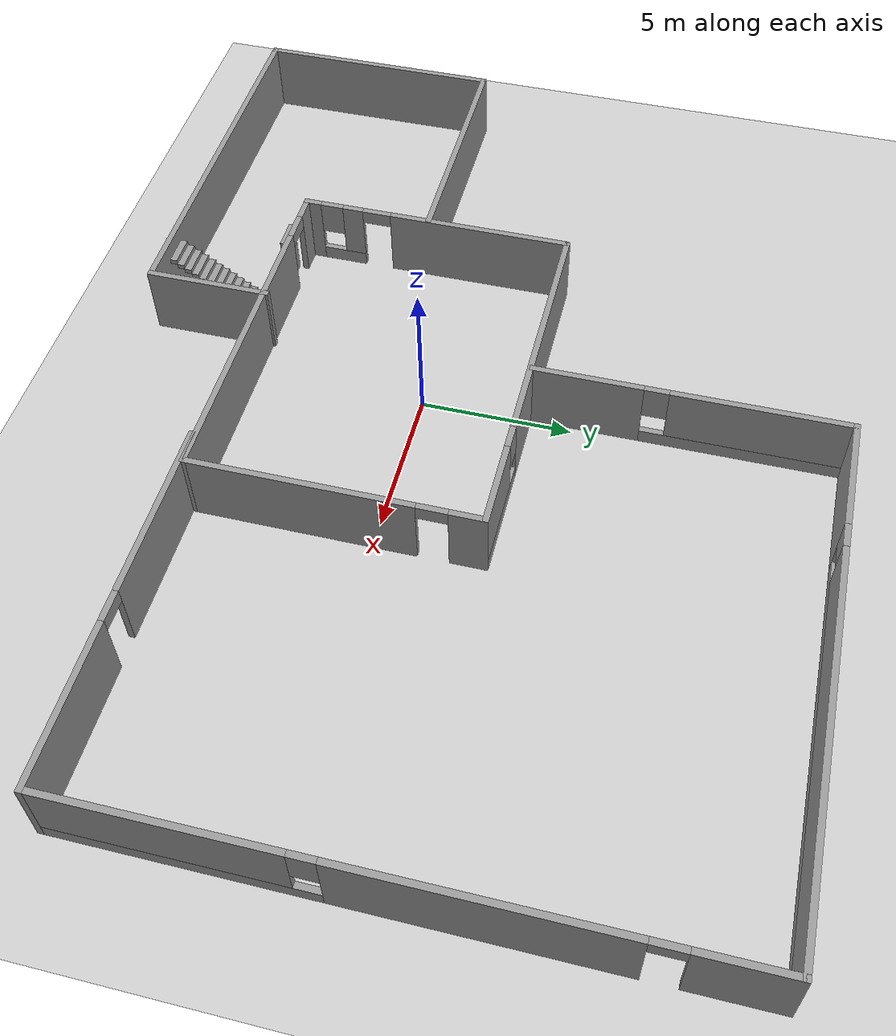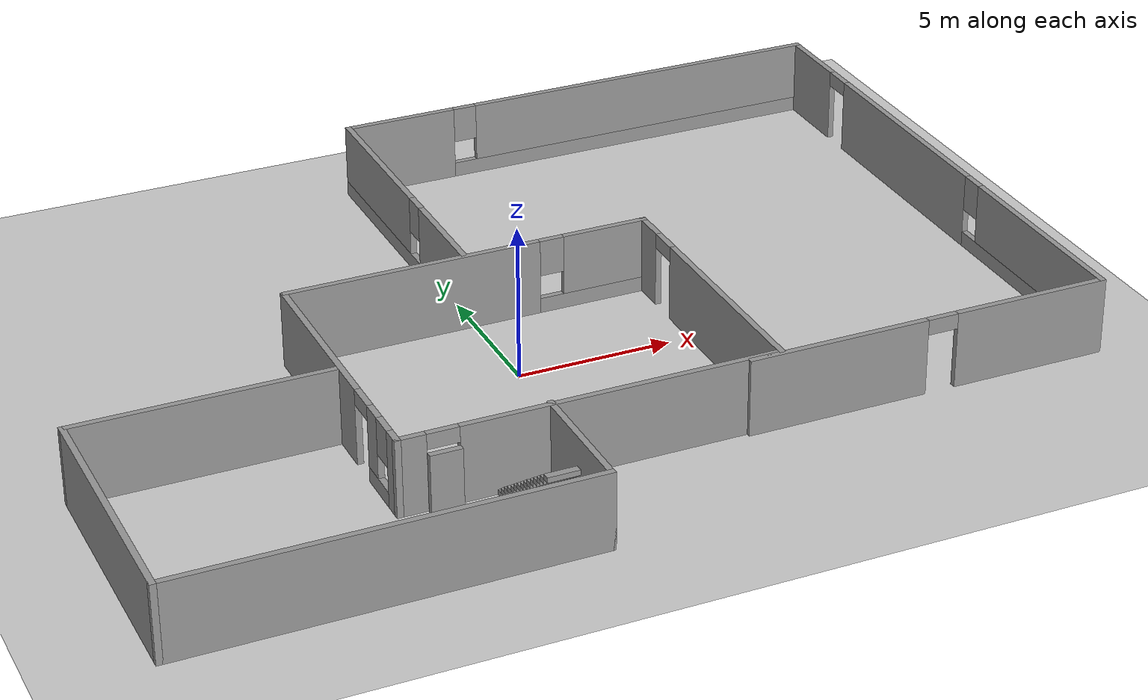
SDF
<sdf version="1.4">
 <world name="default">
  <light name="sun" type="directional">
   <pose>0 0 10 0 -0 0</pose>
   <diffuse>0.8 0.8 0.8 1</diffuse>
   <specular>0.2 0.2 0.2 1</specular>
   <attenuation>
    <range>1000</range>
    <constant>0.9</constant>
    <linear>0.01</linear>
    <quadratic>0.001</quadratic>
   </attenuation>
   <direction>-0.5 0.1 -0.9</direction>
  </light>
  <model name="ground_plane">
   <static>1</static>
   <link name="link">
    <collision name="collision">
     <geometry><plane><normal>0 0 1</normal><size>100 100</size></plane></geometry>
     <surface><friction><ode><mu>100</mu><mu2>50</mu2></ode></friction></surface>
    </collision>
    <visual name="visual">
     <cast_shadows>0</cast_shadows>
     <geometry><plane><normal>0 0 1</normal><size>100 100</size></plane></geometry>
     <material>
      <script><uri>file://media/materials/scripts/gazebo.material</uri><name>Gazebo/Grey</name></script>
     </material>
    </visual>
    <velocity_decay><linear>0</linear><angular>0</angular></velocity_decay>
   </link>
  </model>
  <physics type="ode">
   <max_step_size>0.001</max_step_size>
   <real_time_factor>1</real_time_factor>
   <real_time_update_rate>1000</real_time_update_rate>
   <gravity>0 0 -9.8</gravity>
  </physics>
  <scene><ambient>0.4 0.4 0.4 1</ambient><background>0.7 0.7 0.7 1</background><shadows>1</shadows></scene>
  <spherical_coordinates>
   <surface_model>EARTH_WGS84</surface_model>
   <latitude_deg>0</latitude_deg>
   <longitude_deg>0</longitude_deg>
   <elevation>0</elevation>
   <heading_deg>0</heading_deg>
  </spherical_coordinates>
  <model name="testing_drone">
   <link name="Door_5">
    <collision name="Door_5_Collision">
     <geometry><box><size>1 0.2 2</size></box></geometry>
     <pose>0 0 1 0 -0 0</pose>
    </collision>
    <visual name="Door_5_Visual">
     <pose>0 0 1 0 -0 0</pose>
     <geometry><box><size>1 0.2 2</size></box></geometry>
     <material>
      <script><uri>file://media/materials/scripts/gazebo.material</uri><name>Gazebo/Grey</name></script>
     </material>
    </visual>
    <velocity_decay><linear>0</linear><angular>0</angular></velocity_decay>
    <pose>-4.84187 -6.14423 0 0 -0 0</pose>
   </link>
   <link name="Stairs_1">
    <visual name="Stairs_1_Visual_0">
     <pose>-2.68839 -5.98757 0.083333 0 -0 0</pose>
     <geometry><box><size>1 0.233333 0.166667</size></box></geometry>
     <material>
      <script><uri>file://media/materials/scripts/gazebo.material</uri><name>Gazebo/Grey</name></script>
     </material>
    </visual>
    <collision name="Stairs_1_Collision_0">
     <geometry><box><size>1 0.233333 0.166667</size></box></geometry>
     <pose>-2.68839 -5.98757 0.083333 0 -0 0</pose>
    </collision>
    <visual name="Stairs_1_Visual_1">
     <pose>-2.68839 -6.2209 0.25 0 -0 0</pose>
     <geometry><box><size>1 0.233335 0.166668</size></box></geometry>
     <material>
      <script><uri>file://media/materials/scripts/gazebo.material</uri><name>Gazebo/Grey</name></script>
     </material>
    </visual>
    <collision name="Stairs_1_Collision_1">
     <geometry><box><size>1 0.233335 0.166668</size></box></geometry>
     <pose>-2.68839 -6.2209 0.25 0 -0 0</pose>
    </collision>
    <visual name="Stairs_1_Visual_2">
     <pose>-2.68839 -6.45423 0.416667 0 -0 0</pose>
     <geometry><box><size>1 0.233335 0.166668</size></box></geometry>
     <material>
      <script><uri>file://media/materials/scripts/gazebo.material</uri><name>Gazebo/Grey</name></script>
     </material>
    </visual>
    <collision name="Stairs_1_Collision_2">
     <geometry><box><size>1 0.233335 0.166668</size></box></geometry>
     <pose>-2.68839 -6.45423 0.416667 0 -0 0</pose>
    </collision>
    <visual name="Stairs_1_Visual_3">
     <pose>-2.68839 -6.68757 0.583333 0 -0 0</pose>
     <geometry><box><size>1 0.233335 0.166668</size></box></geometry>
     <material>
      <script><uri>file://media/materials/scripts/gazebo.material</uri><name>Gazebo/Grey</name></script>
     </material>
    </visual>
    <collision name="Stairs_1_Collision_3">
     <geometry><box><size>1 0.233335 0.166668</size></box></geometry>
     <pose>-2.68839 -6.68757 0.583333 0 -0 0</pose>
    </collision>
    <visual name="Stairs_1_Visual_4">
     <pose>-2.68839 -6.9209 0.75 0 -0 0</pose>
     <geometry><box><size>1 0.233335 0.166668</size></box></geometry>
     <material>
      <script><uri>file://media/materials/scripts/gazebo.material</uri><name>Gazebo/Grey</name></script>
     </material>
    </visual>
    <collision name="Stairs_1_Collision_4">
     <geometry><box><size>1 0.233335 0.166668</size></box></geometry>
     <pose>-2.68839 -6.9209 0.75 0 -0 0</pose>
    </collision>
    <visual name="Stairs_1_Visual_5">
     <pose>-2.68839 -7.15423 0.916667 0 -0 0</pose>
     <geometry><box><size>1 0.233335 0.166668</size></box></geometry>
     <material>
      <script><uri>file://media/materials/scripts/gazebo.material</uri><name>Gazebo/Grey</name></script>
     </material>
    </visual>
    <collision name="Stairs_1_Collision_5">
     <geometry><box><size>1 0.233335 0.166668</size></box></geometry>
     <pose>-2.68839 -7.15423 0.916667 0 -0 0</pose>
    </collision>
    <visual name="Stairs_1_Visual_6">
     <pose>-2.68839 -7.38757 1.08333 0 -0 0</pose>
     <geometry><box><size>1 0.233335 0.166668</size></box></geometry>
     <material>
      <script><uri>file://media/materials/scripts/gazebo.material</uri><name>Gazebo/Grey</name></script>
     </material>
    </visual>
    <collision name="Stairs_1_Collision_6">
     <geometry><box><size>1 0.233335 0.166668</size></box></geometry>
     <pose>-2.68839 -7.38757 1.08333 0 -0 0</pose>
    </collision>
    <visual name="Stairs_1_Visual_7">
     <pose>-2.68839 -7.6209 1.25 0 -0 0</pose>
     <geometry><box><size>1 0.233335 0.166668</size></box></geometry>
     <material>
      <script><uri>file://media/materials/scripts/gazebo.material</uri><name>Gazebo/Grey</name></script>
     </material>
    </visual>
    <collision name="Stairs_1_Collision_7">
     <geometry><box><size>1 0.233335 0.166668</size></box></geometry>
     <pose>-2.68839 -7.6209 1.25 0 -0 0</pose>
    </collision>
    <visual name="Stairs_1_Visual_8">
     <pose>-2.68839 -7.85423 1.41667 0 -0 0</pose>
     <geometry><box><size>1 0.233335 0.166668</size></box></geometry>
     <material>
      <script><uri>file://media/materials/scripts/gazebo.material</uri><name>Gazebo/Grey</name></script>
     </material>
    </visual>
    <collision name="Stairs_1_Collision_8">
     <geometry><box><size>1 0.233335 0.166668</size></box></geometry>
     <pose>-2.68839 -7.85423 1.41667 0 -0 0</pose>
    </collision>
    <visual name="Stairs_1_Visual_9">
     <pose>-2.68839 -8.08757 1.58333 0 -0 0</pose>
     <geometry><box><size>1 0.233335 0.166668</size></box></geometry>
     <material>
      <script><uri>file://media/materials/scripts/gazebo.material</uri><name>Gazebo/Grey</name></script>
     </material>
    </visual>
    <collision name="Stairs_1_Collision_9">
     <geometry><box><size>1 0.233335 0.166668</size></box></geometry>
     <pose>-2.68839 -8.08757 1.58333 0 -0 0</pose>
    </collision>
    <visual name="Stairs_1_Visual_10">
     <pose>-2.68839 -8.3209 1.75 0 -0 0</pose>
     <geometry><box><size>1 0.233335 0.166668</size></box></geometry>
     <material>
      <script><uri>file://media/materials/scripts/gazebo.material</uri><name>Gazebo/Grey</name></script>
     </material>
    </visual>
    <collision name="Stairs_1_Collision_10">
     <geometry><box><size>1 0.233335 0.166668</size></box></geometry>
     <pose>-2.68839 -8.3209 1.75 0 -0 0</pose>
    </collision>
    <visual name="Stairs_1_Visual_11">
     <pose>-2.68839 -8.55423 1.91667 0 -0 0</pose>
     <geometry><box><size>1 0.233335 0.166668</size></box></geometry>
     <material>
      <script><uri>file://media/materials/scripts/gazebo.material</uri><name>Gazebo/Grey</name></script>
     </material>
    </visual>
    <collision name="Stairs_1_Collision_11">
     <geometry><box><size>1 0.233335 0.166668</size></box></geometry>
     <pose>-2.68839 -8.55423 1.91667 0 -0 0</pose>
    </collision>
    <visual name="Stairs_1_Visual_12">
     <pose>-2.68839 -8.78757 2.08333 0 -0 0</pose>
     <geometry><box><size>1 0.233335 0.166668</size></box></geometry>
     <material>
      <script><uri>file://media/materials/scripts/gazebo.material</uri><name>Gazebo/Grey</name></script>
     </material>
    </visual>
    <collision name="Stairs_1_Collision_12">
     <geometry><box><size>1 0.233335 0.166668</size></box></geometry>
     <pose>-2.68839 -8.78757 2.08333 0 -0 0</pose>
    </collision>
    <visual name="Stairs_1_Visual_13">
     <pose>-2.68839 -9.0209 2.25 0 -0 0</pose>
     <geometry><box><size>1 0.233335 0.166668</size></box></geometry>
     <material>
      <script><uri>file://media/materials/scripts/gazebo.material</uri><name>Gazebo/Grey</name></script>
     </material>
    </visual>
    <collision name="Stairs_1_Collision_13">
     <geometry><box><size>1 0.233335 0.166668</size></box></geometry>
     <pose>-2.68839 -9.0209 2.25 0 -0 0</pose>
    </collision>
    <visual name="Stairs_1_Visual_14">
     <pose>-2.68839 -9.25423 2.41667 0 -0 0</pose>
     <geometry><box><size>1 0.233335 0.166668</size></box></geometry>
     <material>
      <script><uri>file://media/materials/scripts/gazebo.material</uri><name>Gazebo/Grey</name></script>
     </material>
    </visual>
    <collision name="Stairs_1_Collision_14">
     <geometry><box><size>1 0.233335 0.166668</size></box></geometry>
     <pose>-2.68839 -9.25423 2.41667 0 -0 0</pose>
    </collision>
    <velocity_decay><linear>0</linear><angular>0</angular></velocity_decay>
   </link>
   <link name="Wall_76">
    <pose>-0.146896 3.54275 0 0 -0 0</pose>
    <visual name="Wall_76_Visual_0">
     <pose>-1.84648 0 1.25 0 -0 0</pose>
     <geometry><box><size>8.40029 0.2 2.5</size></box></geometry>
     <material>
      <script><uri>file://media/materials/scripts/gazebo.material</uri><name>Gazebo/Grey</name></script>
     </material>
    </visual>
    <collision name="Wall_76_Collision_0">
     <geometry><box><size>8.40029 0.2 2.5</size></box></geometry>
     <pose>-1.84648 0 1.25 0 -0 0</pose>
    </collision>
    <visual name="Wall_76_Visual_1">
     <pose>4.20014 0 0.25 0 -0 0</pose>
     <geometry><box><size>3.69296 0.2 0.5</size></box></geometry>
     <material>
      <script><uri>file://media/materials/scripts/gazebo.material</uri><name>Gazebo/Grey</name></script>
     </material>
    </visual>
    <collision name="Wall_76_Collision_1">
     <geometry><box><size>3.69296 0.2 0.5</size></box></geometry>
     <pose>4.20014 0 0.25 0 -0 0</pose>
    </collision>
    <visual name="Wall_76_Visual_2">
     <pose>4.60014 0 1.5 0 -0 0</pose>
     <geometry><box><size>2.89296 0.2 2</size></box></geometry>
     <material>
      <script><uri>file://media/materials/scripts/gazebo.material</uri><name>Gazebo/Grey</name></script>
     </material>
    </visual>
    <collision name="Wall_76_Collision_2">
     <geometry><box><size>2.89296 0.2 2</size></box></geometry>
     <pose>4.60014 0 1.5 0 -0 0</pose>
    </collision>
    <visual name="Wall_76_Visual_3">
     <pose>2.75367 0 1.9 0 -0 0</pose>
     <geometry><box><size>0.8 0.2 1.2</size></box></geometry>
     <material>
      <script><uri>file://media/materials/scripts/gazebo.material</uri><name>Gazebo/Grey</name></script>
     </material>
    </visual>
    <collision name="Wall_76_Collision_3">
     <geometry><box><size>0.8 0.2 1.2</size></box></geometry>
     <pose>2.75367 0 1.9 0 -0 0</pose>
    </collision>
    <velocity_decay><linear>0</linear><angular>0</angular></velocity_decay>
   </link>
   <link name="Wall_77">
    <pose>5.79972 -1.12556 0 0 0 -1.5708</pose>
    <visual name="Wall_77_Visual_0">
     <pose>-4.16148 0 1.25 0 -0 0</pose>
     <geometry><box><size>1.21364 0.2 2.5</size></box></geometry>
     <material>
      <script><uri>file://media/materials/scripts/gazebo.material</uri><name>Gazebo/Grey</name></script>
     </material>
    </visual>
    <collision name="Wall_77_Collision_0">
     <geometry><box><size>1.21364 0.2 2.5</size></box></geometry>
     <pose>-4.16148 0 1.25 0 -0 0</pose>
    </collision>
    <visual name="Wall_77_Visual_1">
     <pose>1.10682 0 1.25 0 -0 0</pose>
     <geometry><box><size>7.32297 0.2 2.5</size></box></geometry>
     <material>
      <script><uri>file://media/materials/scripts/gazebo.material</uri><name>Gazebo/Grey</name></script>
     </material>
    </visual>
    <collision name="Wall_77_Collision_1">
     <geometry><box><size>7.32297 0.2 2.5</size></box></geometry>
     <pose>1.10682 0 1.25 0 -0 0</pose>
    </collision>
    <visual name="Wall_77_Visual_2">
     <pose>-3.05466 0 2.25 0 -0 0</pose>
     <geometry><box><size>1 0.2 0.5</size></box></geometry>
     <material>
      <script><uri>file://media/materials/scripts/gazebo.material</uri><name>Gazebo/Grey</name></script>
     </material>
    </visual>
    <collision name="Wall_77_Collision_2">
     <geometry><box><size>1 0.2 0.5</size></box></geometry>
     <pose>-3.05466 0 2.25 0 -0 0</pose>
    </collision>
    <velocity_decay><linear>0</linear><angular>0</angular></velocity_decay>
   </link>
   <link name="Wall_78">
    <pose>-0.170001 -5.79386 0 0 -0 3.14159</pose>
    <visual name="Wall_78_Visual_0">
     <pose>-0.974899 0 1.25 0 -0 0</pose>
     <geometry><box><size>10.1897 0.2 2.5</size></box></geometry>
     <material>
      <script><uri>file://media/materials/scripts/gazebo.material</uri><name>Gazebo/Grey</name></script>
     </material>
    </visual>
    <collision name="Wall_78_Collision_0">
     <geometry><box><size>10.1897 0.2 2.5</size></box></geometry>
     <pose>-0.974899 0 1.25 0 -0 0</pose>
    </collision>
    <visual name="Wall_78_Visual_1">
     <pose>5.59483 0 1.25 0 -0 0</pose>
     <geometry><box><size>0.949799 0.2 2.5</size></box></geometry>
     <material>
      <script><uri>file://media/materials/scripts/gazebo.material</uri><name>Gazebo/Grey</name></script>
     </material>
    </visual>
    <collision name="Wall_78_Collision_1">
     <geometry><box><size>0.949799 0.2 2.5</size></box></geometry>
     <pose>5.59483 0 1.25 0 -0 0</pose>
    </collision>
    <visual name="Wall_78_Visual_2">
     <pose>4.61993 0 2.25 0 -0 0</pose>
     <geometry><box><size>1 0.2 0.5</size></box></geometry>
     <material>
      <script><uri>file://media/materials/scripts/gazebo.material</uri><name>Gazebo/Grey</name></script>
     </material>
    </visual>
    <collision name="Wall_78_Collision_2">
     <geometry><box><size>1 0.2 0.5</size></box></geometry>
     <pose>4.61993 0 2.25 0 -0 0</pose>
    </collision>
    <velocity_decay><linear>0</linear><angular>0</angular></velocity_decay>
   </link>
   <link name="Wall_79">
    <pose>-6.13973 -1.14147 0 0 -0 1.5708</pose>
    <visual name="Wall_79_Visual_0">
     <pose>-4.43715 0 1.25 0 -0 0</pose>
     <geometry><box><size>0.630478 0.2 2.5</size></box></geometry>
     <material>
      <script><uri>file://media/materials/scripts/gazebo.material</uri><name>Gazebo/Grey</name></script>
     </material>
    </visual>
    <collision name="Wall_79_Collision_0">
     <geometry><box><size>0.630478 0.2 2.5</size></box></geometry>
     <pose>-4.43715 0 1.25 0 -0 0</pose>
    </collision>
    <visual name="Wall_79_Visual_1">
     <pose>1.57941 0 1.25 0 -0 0</pose>
     <geometry><box><size>6.34597 0.2 2.5</size></box></geometry>
     <material>
      <script><uri>file://media/materials/scripts/gazebo.material</uri><name>Gazebo/Grey</name></script>
     </material>
    </visual>
    <collision name="Wall_79_Collision_1">
     <geometry><box><size>6.34597 0.2 2.5</size></box></geometry>
     <pose>1.57941 0 1.25 0 -0 0</pose>
    </collision>
    <visual name="Wall_79_Visual_2">
     <pose>-3.35774 0 0.25 0 -0 0</pose>
     <geometry><box><size>1.52834 0.2 0.5</size></box></geometry>
     <material>
      <script><uri>file://media/materials/scripts/gazebo.material</uri><name>Gazebo/Grey</name></script>
     </material>
    </visual>
    <collision name="Wall_79_Collision_2">
     <geometry><box><size>1.52834 0.2 0.5</size></box></geometry>
     <pose>-3.35774 0 0.25 0 -0 0</pose>
    </collision>
    <visual name="Wall_79_Visual_3">
     <pose>-2.95775 0 1.5 0 -0 0</pose>
     <geometry><box><size>0.728337 0.2 2</size></box></geometry>
     <material>
      <script><uri>file://media/materials/scripts/gazebo.material</uri><name>Gazebo/Grey</name></script>
     </material>
    </visual>
    <collision name="Wall_79_Collision_3">
     <geometry><box><size>0.728337 0.2 2</size></box></geometry>
     <pose>-2.95775 0 1.5 0 -0 0</pose>
    </collision>
    <visual name="Wall_79_Visual_4">
     <pose>-3.72191 0 1.9 0 -0 0</pose>
     <geometry><box><size>0.8 0.2 1.2</size></box></geometry>
     <material>
      <script><uri>file://media/materials/scripts/gazebo.material</uri><name>Gazebo/Grey</name></script>
     </material>
    </visual>
    <collision name="Wall_79_Collision_4">
     <geometry><box><size>0.8 0.2 1.2</size></box></geometry>
     <pose>-3.72191 0 1.9 0 -0 0</pose>
    </collision>
    <visual name="Wall_79_Visual_5">
     <pose>-2.09358 0 2.25 0 -0 0</pose>
     <geometry><box><size>1 0.2 0.5</size></box></geometry>
     <material>
      <script><uri>file://media/materials/scripts/gazebo.material</uri><name>Gazebo/Grey</name></script>
     </material>
    </visual>
    <collision name="Wall_79_Collision_5">
     <geometry><box><size>1 0.2 0.5</size></box></geometry>
     <pose>-2.09358 0 2.25 0 -0 0</pose>
    </collision>
    <velocity_decay><linear>0</linear><angular>0</angular></velocity_decay>
   </link>
   <link name="Wall_81">
    <collision name="Wall_81_Collision">
     <geometry><box><size>8.34169 0.2 2.5</size></box></geometry>
     <pose>0 0 1.25 0 -0 0</pose>
    </collision>
    <visual name="Wall_81_Visual">
     <pose>0 0 1.25 0 -0 0</pose>
     <geometry><box><size>8.34169 0.2 2.5</size></box></geometry>
     <material>
      <script><uri>file://media/materials/scripts/gazebo.material</uri><name>Gazebo/Grey</name></script>
     </material>
    </visual>
    <velocity_decay><linear>0</linear><angular>0</angular></velocity_decay>
    <pose>-10.2571 -1.37409 0 0 -0 3.14159</pose>
   </link>
   <link name="Wall_82">
    <collision name="Wall_82_Collision">
     <geometry><box><size>8.60029 0.2 2.5</size></box></geometry>
     <pose>0 0 1.25 0 -0 0</pose>
    </collision>
    <visual name="Wall_82_Visual">
     <pose>0 0 1.25 0 -0 0</pose>
     <geometry><box><size>8.60029 0.2 2.5</size></box></geometry>
     <material>
      <script><uri>file://media/materials/scripts/gazebo.material</uri><name>Gazebo/Grey</name></script>
     </material>
    </visual>
    <velocity_decay><linear>0</linear><angular>0</angular></velocity_decay>
    <pose>-14.3279 -5.57423 0 0 0 -1.5708</pose>
   </link>
   <link name="Wall_83">
    <collision name="Wall_83_Collision">
     <geometry><box><size>13.0701 0.2 2.5</size></box></geometry>
     <pose>0 0 1.25 0 -0 0</pose>
    </collision>
    <visual name="Wall_83_Visual">
     <pose>0 0 1.25 0 -0 0</pose>
     <geometry><box><size>13.0701 0.2 2.5</size></box></geometry>
     <material>
      <script><uri>file://media/materials/scripts/gazebo.material</uri><name>Gazebo/Grey</name></script>
     </material>
    </visual>
    <velocity_decay><linear>0</linear><angular>0</angular></velocity_decay>
    <pose>-7.89288 -9.77437 0 0 -0 0</pose>
   </link>
   <link name="Wall_84">
    <collision name="Wall_84_Collision">
     <geometry><box><size>4.26084 0.2 2.5</size></box></geometry>
     <pose>0 0 1.25 0 -0 0</pose>
    </collision>
    <visual name="Wall_84_Visual">
     <pose>0 0 1.25 0 -0 0</pose>
     <geometry><box><size>4.26084 0.2 2.5</size></box></geometry>
     <material>
      <script><uri>file://media/materials/scripts/gazebo.material</uri><name>Gazebo/Grey</name></script>
     </material>
    </visual>
    <velocity_decay><linear>0</linear><angular>0</angular></velocity_decay>
    <pose>-1.45783 -7.74395 0 0 -0 1.5708</pose>
   </link>
   <link name="Wall_90">
    <pose>-0.276963 8.68439 0 0 -0 1.5708</pose>
    <visual name="Wall_90_Visual_0">
     <pose>-3.33417 0 1.25 0 -0 0</pose>
     <geometry><box><size>3.67953 0.2 2.5</size></box></geometry>
     <material>
      <script><uri>file://media/materials/scripts/gazebo.material</uri><name>Gazebo/Grey</name></script>
     </material>
    </visual>
    <collision name="Wall_90_Collision_0">
     <geometry><box><size>3.67953 0.2 2.5</size></box></geometry>
     <pose>-3.33417 0 1.25 0 -0 0</pose>
    </collision>
    <visual name="Wall_90_Visual_1">
     <pose>1.83976 0 0.25 0 -0 0</pose>
     <geometry><box><size>6.66835 0.2 0.5</size></box></geometry>
     <material>
      <script><uri>file://media/materials/scripts/gazebo.material</uri><name>Gazebo/Grey</name></script>
     </material>
    </visual>
    <collision name="Wall_90_Collision_1">
     <geometry><box><size>6.66835 0.2 0.5</size></box></geometry>
     <pose>1.83976 0 0.25 0 -0 0</pose>
    </collision>
    <visual name="Wall_90_Visual_2">
     <pose>2.23976 0 1.5 0 -0 0</pose>
     <geometry><box><size>5.86834 0.2 2</size></box></geometry>
     <material>
      <script><uri>file://media/materials/scripts/gazebo.material</uri><name>Gazebo/Grey</name></script>
     </material>
    </visual>
    <collision name="Wall_90_Collision_2">
     <geometry><box><size>5.86834 0.2 2</size></box></geometry>
     <pose>2.23976 0 1.5 0 -0 0</pose>
    </collision>
    <visual name="Wall_90_Visual_3">
     <pose>-1.09441 0 1.9 0 -0 0</pose>
     <geometry><box><size>0.8 0.2 1.2</size></box></geometry>
     <material>
      <script><uri>file://media/materials/scripts/gazebo.material</uri><name>Gazebo/Grey</name></script>
     </material>
    </visual>
    <collision name="Wall_90_Collision_3">
     <geometry><box><size>0.8 0.2 1.2</size></box></geometry>
     <pose>-1.09441 0 1.9 0 -0 0</pose>
    </collision>
    <velocity_decay><linear>0</linear><angular>0</angular></velocity_decay>
   </link>
   <link name="Wall_91">
    <pose>8.20022 13.7583 0 0 -0 0</pose>
    <visual name="Wall_91_Visual_0">
     <pose>-6.65271 0 1.25 0 -0 0</pose>
     <geometry><box><size>3.84895 0.2 2.5</size></box></geometry>
     <material>
      <script><uri>file://media/materials/scripts/gazebo.material</uri><name>Gazebo/Grey</name></script>
     </material>
    </visual>
    <collision name="Wall_91_Collision_0">
     <geometry><box><size>3.84895 0.2 2.5</size></box></geometry>
     <pose>-6.65271 0 1.25 0 -0 0</pose>
    </collision>
    <visual name="Wall_91_Visual_1">
     <pose>1.92448 0 0.25 0 -0 0</pose>
     <geometry><box><size>13.3054 0.2 0.5</size></box></geometry>
     <material>
      <script><uri>file://media/materials/scripts/gazebo.material</uri><name>Gazebo/Grey</name></script>
     </material>
    </visual>
    <collision name="Wall_91_Collision_1">
     <geometry><box><size>13.3054 0.2 0.5</size></box></geometry>
     <pose>1.92448 0 0.25 0 -0 0</pose>
    </collision>
    <visual name="Wall_91_Visual_2">
     <pose>2.32448 0 1.5 0 -0 0</pose>
     <geometry><box><size>12.5054 0.2 2</size></box></geometry>
     <material>
      <script><uri>file://media/materials/scripts/gazebo.material</uri><name>Gazebo/Grey</name></script>
     </material>
    </visual>
    <collision name="Wall_91_Collision_2">
     <geometry><box><size>12.5054 0.2 2</size></box></geometry>
     <pose>2.32448 0 1.5 0 -0 0</pose>
    </collision>
    <visual name="Wall_91_Visual_3">
     <pose>-4.32823 0 1.9 0 -0 0</pose>
     <geometry><box><size>0.8 0.2 1.2</size></box></geometry>
     <material>
      <script><uri>file://media/materials/scripts/gazebo.material</uri><name>Gazebo/Grey</name></script>
     </material>
    </visual>
    <collision name="Wall_91_Collision_3">
     <geometry><box><size>0.8 0.2 1.2</size></box></geometry>
     <pose>-4.32823 0 1.9 0 -0 0</pose>
    </collision>
    <velocity_decay><linear>0</linear><angular>0</angular></velocity_decay>
   </link>
   <link name="Wall_92">
    <pose>16.6774 3.91984 0 0 0 -1.5708</pose>
    <visual name="Wall_92_Visual_0">
     <pose>-8.54383 0 1.25 0 -0 0</pose>
     <geometry><box><size>2.7893 0.2 2.5</size></box></geometry>
     <material>
      <script><uri>file://media/materials/scripts/gazebo.material</uri><name>Gazebo/Grey</name></script>
     </material>
    </visual>
    <collision name="Wall_92_Collision_0">
     <geometry><box><size>2.7893 0.2 2.5</size></box></geometry>
     <pose>-8.54383 0 1.25 0 -0 0</pose>
    </collision>
    <visual name="Wall_92_Visual_1">
     <pose>-2.07688 0 1.25 0 -0 0</pose>
     <geometry><box><size>8.1446 0.2 2.5</size></box></geometry>
     <material>
      <script><uri>file://media/materials/scripts/gazebo.material</uri><name>Gazebo/Grey</name></script>
     </material>
    </visual>
    <collision name="Wall_92_Collision_1">
     <geometry><box><size>8.1446 0.2 2.5</size></box></geometry>
     <pose>-2.07688 0 1.25 0 -0 0</pose>
    </collision>
    <visual name="Wall_92_Visual_2">
     <pose>5.96695 0 0.25 0 -0 0</pose>
     <geometry><box><size>7.94307 0.2 0.5</size></box></geometry>
     <material>
      <script><uri>file://media/materials/scripts/gazebo.material</uri><name>Gazebo/Grey</name></script>
     </material>
    </visual>
    <collision name="Wall_92_Collision_2">
     <geometry><box><size>7.94307 0.2 0.5</size></box></geometry>
     <pose>5.96695 0 0.25 0 -0 0</pose>
    </collision>
    <visual name="Wall_92_Visual_3">
     <pose>6.36695 0 1.5 0 -0 0</pose>
     <geometry><box><size>7.14307 0.2 2</size></box></geometry>
     <material>
      <script><uri>file://media/materials/scripts/gazebo.material</uri><name>Gazebo/Grey</name></script>
     </material>
    </visual>
    <collision name="Wall_92_Collision_3">
     <geometry><box><size>7.14307 0.2 2</size></box></geometry>
     <pose>6.36695 0 1.5 0 -0 0</pose>
    </collision>
    <visual name="Wall_92_Visual_4">
     <pose>2.39541 0 1.9 0 -0 0</pose>
     <geometry><box><size>0.8 0.2 1.2</size></box></geometry>
     <material>
      <script><uri>file://media/materials/scripts/gazebo.material</uri><name>Gazebo/Grey</name></script>
     </material>
    </visual>
    <collision name="Wall_92_Collision_4">
     <geometry><box><size>0.8 0.2 1.2</size></box></geometry>
     <pose>2.39541 0 1.9 0 -0 0</pose>
    </collision>
    <visual name="Wall_92_Visual_5">
     <pose>-6.64918 0 2.25 0 -0 0</pose>
     <geometry><box><size>1 0.2 0.5</size></box></geometry>
     <material>
      <script><uri>file://media/materials/scripts/gazebo.material</uri><name>Gazebo/Grey</name></script>
     </material>
    </visual>
    <collision name="Wall_92_Collision_5">
     <geometry><box><size>1 0.2 0.5</size></box></geometry>
     <pose>-6.64918 0 2.25 0 -0 0</pose>
    </collision>
    <velocity_decay><linear>0</linear><angular>0</angular></velocity_decay>
   </link>
   <link name="Wall_93">
    <pose>10.7372 -5.91864 0 0 -0 3.14159</pose>
    <visual name="Wall_93_Visual_0">
     <pose>-3.4536 0 1.25 0 -0 0</pose>
     <geometry><box><size>5.17324 0.2 2.5</size></box></geometry>
     <material>
      <script><uri>file://media/materials/scripts/gazebo.material</uri><name>Gazebo/Grey</name></script>
     </material>
    </visual>
    <collision name="Wall_93_Collision_0">
     <geometry><box><size>5.17324 0.2 2.5</size></box></geometry>
     <pose>-3.4536 0 1.25 0 -0 0</pose>
    </collision>
    <visual name="Wall_93_Visual_1">
     <pose>3.08662 0 1.25 0 -0 0</pose>
     <geometry><box><size>5.90719 0.2 2.5</size></box></geometry>
     <material>
      <script><uri>file://media/materials/scripts/gazebo.material</uri><name>Gazebo/Grey</name></script>
     </material>
    </visual>
    <collision name="Wall_93_Collision_1">
     <geometry><box><size>5.90719 0.2 2.5</size></box></geometry>
     <pose>3.08662 0 1.25 0 -0 0</pose>
    </collision>
    <visual name="Wall_93_Visual_2">
     <pose>-0.366977 0 2.25 0 -0 0</pose>
     <geometry><box><size>1 0.2 0.5</size></box></geometry>
     <material>
      <script><uri>file://media/materials/scripts/gazebo.material</uri><name>Gazebo/Grey</name></script>
     </material>
    </visual>
    <collision name="Wall_93_Collision_2">
     <geometry><box><size>1 0.2 0.5</size></box></geometry>
     <pose>-0.366977 0 2.25 0 -0 0</pose>
    </collision>
    <velocity_decay><linear>0</linear><angular>0</angular></velocity_decay>
   </link>
   <static>1</static>
  </model>
  <model name="cabinet">
   <static>1</static>
   <link name="cabinet_bottom_plate">
    <inertial>
     <pose>0 0 -1 0 -0 0</pose>
     <inertia><ixx>2.05</ixx><ixy>0</ixy><ixz>0</ixz><iyy>2.05</iyy><iyz>0</iyz><izz>2.05</izz></inertia>
     <mass>25</mass>
    </inertial>
    <collision name="cabinet_bottom_plate_geom">
     <pose>0 0 0.01 0 -0 0</pose>
     <geometry><box><size>0.45 0.45 0.02</size></box></geometry>
    </collision>
    <visual name="cabinet_bottom_plate_geom_visual">
     <pose>0 0 0.01 0 -0 0</pose>
     <geometry><box><size>0.45 0.45 0.02</size></box></geometry>
     <material>
      <script><uri>file://media/materials/scripts/gazebo.material</uri><name>Gazebo/Wood</name></script>
     </material>
    </visual>
    <collision name="cabinet_bottom_plate_geom_cabinet_back_plate">
     <pose>0.235 0 0.51 0 -0 0</pose>
     <geometry><box><size>0.02 0.45 1.02</size></box></geometry>
    </collision>
    <visual name="cabinet_bottom_plate_geom_cabinet_back_plate_visual">
     <pose>0.235 0 0.51 0 -0 0</pose>
     <geometry><box><size>0.02 0.45 1.02</size></box></geometry>
     <material>
      <script><uri>file://media/materials/scripts/gazebo.material</uri><name>Gazebo/Wood</name></script>
     </material>
    </visual>
    <collision name="cabinet_bottom_plate_geom_cabinet_left_plate">
     <pose>0 0.235 0.51 0 -0 0</pose>
     <geometry><box><size>0.45 0.02 1.02</size></box></geometry>
    </collision>
    <visual name="cabinet_bottom_plate_geom_cabinet_left_plate_visual">
     <pose>0 0.235 0.51 0 -0 0</pose>
     <geometry><box><size>0.45 0.02 1.02</size></box></geometry>
     <material>
      <script><uri>file://media/materials/scripts/gazebo.material</uri><name>Gazebo/Wood</name></script>
     </material>
    </visual>
    <collision name="cabinet_bottom_plate_geom_cabinet_middle_plate">
     <pose>0 0 0.51 0 -0 0</pose>
     <geometry><box><size>0.45 0.45 0.02</size></box></geometry>
    </collision>
    <visual name="cabinet_bottom_plate_geom_cabinet_middle_plate_visual">
     <pose>0 0 0.51 0 -0 0</pose>
     <geometry><box><size>0.45 0.45 0.02</size></box></geometry>
     <material>
      <script><uri>file://media/materials/scripts/gazebo.material</uri><name>Gazebo/Wood</name></script>
     </material>
    </visual>
    <collision name="cabinet_bottom_plate_geom_cabinet_right_plate">
     <pose>0 -0.235 0.51 0 -0 0</pose>
     <geometry><box><size>0.45 0.02 1.02</size></box></geometry>
    </collision>
    <visual name="cabinet_bottom_plate_geom_cabinet_right_plate_visual">
     <pose>0 -0.235 0.51 0 -0 0</pose>
     <geometry><box><size>0.45 0.02 1.02</size></box></geometry>
     <material>
      <script><uri>file://media/materials/scripts/gazebo.material</uri><name>Gazebo/Wood</name></script>
     </material>
    </visual>
    <collision name="cabinet_bottom_plate_geom_cabinet_top_plate">
     <pose>0 0 1.01 0 -0 0</pose>
     <geometry><box><size>0.45 0.45 0.02</size></box></geometry>
    </collision>
    <visual name="cabinet_bottom_plate_geom_cabinet_top_plate_visual">
     <pose>0 0 1.01 0 -0 0</pose>
     <geometry><box><size>0.45 0.45 0.02</size></box></geometry>
     <material>
      <script><uri>file://media/materials/scripts/gazebo.material</uri><name>Gazebo/Wood</name></script>
     </material>
    </visual>
    <velocity_decay><linear>0</linear><angular>0</angular></velocity_decay>
   </link>
   <pose>5.51478 -5 0 0 -0 0</pose>
  </model>
 </world>
</sdf>
